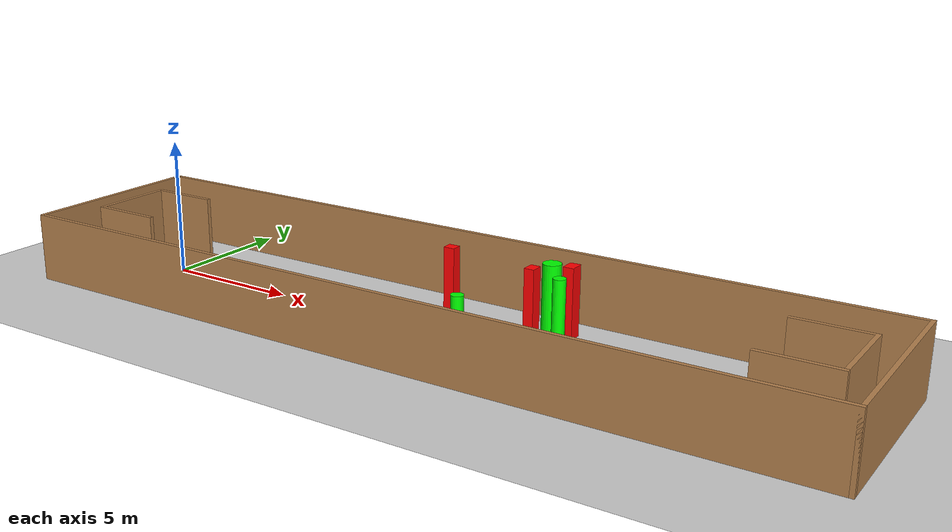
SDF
<sdf version="1.7">
 <world name="default">
  <light name="sun" type="directional">
   <pose>0 0 10 0 -0 0</pose>
   <diffuse>0.8 0.8 0.8 1</diffuse>
   <specular>0.2 0.2 0.2 1</specular>
   <attenuation>
    <range>1000</range>
    <constant>0.9</constant>
    <linear>0.01</linear>
    <quadratic>0.001</quadratic>
   </attenuation>
   <direction>-0.5 0.1 -0.9</direction>
   <spot><inner_angle>0</inner_angle><outer_angle>0</outer_angle><falloff>0</falloff></spot>
  </light>
  <model name="ground_plane">
   <static>1</static>
   <link name="link">
    <collision name="collision">
     <geometry><plane><normal>0 0 1</normal><size>100 100</size></plane></geometry>
     <surface>
      <contact><collide_bitmask>65535</collide_bitmask></contact>
      <friction><ode><mu>100</mu><mu2>50</mu2></ode></friction>
     </surface>
    </collision>
    <visual name="visual">
     <cast_shadows>0</cast_shadows>
     <geometry><plane><normal>0 0 1</normal><size>100 100</size></plane></geometry>
     <material>
      <script><uri>file://media/materials/scripts/gazebo.material</uri><name>Gazebo/Grey</name></script>
     </material>
    </visual>
   </link>
  </model>
  <gravity>0 0 -9.8</gravity>
  <magnetic_field>6e-06 2.3e-05 -4.2e-05</magnetic_field>
  <atmosphere type="adiabatic"/>
  <physics type="ode">
   <max_step_size>0.001</max_step_size>
   <real_time_factor>1</real_time_factor>
   <real_time_update_rate>1000</real_time_update_rate>
  </physics>
  <scene><ambient>0.4 0.4 0.4 1</ambient><background>0.7 0.7 0.7 1</background><shadows>1</shadows></scene>
  <spherical_coordinates>
   <surface_model>EARTH_WGS84</surface_model>
   <latitude_deg>0</latitude_deg>
   <longitude_deg>0</longitude_deg>
   <elevation>0</elevation>
   <heading_deg>0</heading_deg>
  </spherical_coordinates>
  <model name="my_base_walls">
   <link name="Wall_0">
    <collision name="Wall_0_Collision">
     <geometry><box><size>7.15 0.15 2.5</size></box></geometry>
     <pose>0 0 1.25 0 -0 0</pose>
    </collision>
    <visual name="Wall_0_Visual">
     <pose>0 0 1.25 0 -0 0</pose>
     <geometry><box><size>7.15 0.15 2.5</size></box></geometry>
     <material>
      <script><uri>file://media/materials/scripts/gazebo.material</uri><name>Gazebo/Wood</name></script>
      <ambient>1 1 1 1</ambient>
     </material>
     <meta><layer>0</layer></meta>
    </visual>
    <pose>-15 0 0 0 -0 1.5708</pose>
   </link>
   <link name="Wall_10">
    <collision name="Wall_10_Collision">
     <geometry><box><size>2.65 0.15 2.5</size></box></geometry>
     <pose>0 0 1.25 0 -0 0</pose>
    </collision>
    <visual name="Wall_10_Visual">
     <pose>0 0 1.25 0 -0 0</pose>
     <geometry><box><size>2.65 0.15 2.5</size></box></geometry>
     <material>
      <script><uri>file://media/materials/scripts/gazebo.material</uri><name>Gazebo/Wood</name></script>
      <ambient>1 1 1 1</ambient>
     </material>
     <meta><layer>0</layer></meta>
    </visual>
    <pose>-12.75 -1.5 0 0 -0 0</pose>
   </link>
   <link name="Wall_12">
    <collision name="Wall_12_Collision">
     <geometry><box><size>2.65 0.15 2.5</size></box></geometry>
     <pose>0 0 1.25 0 -0 0</pose>
    </collision>
    <visual name="Wall_12_Visual">
     <pose>0 0 1.25 0 -0 0</pose>
     <geometry><box><size>2.65 0.15 2.5</size></box></geometry>
     <material>
      <script><uri>file://media/materials/scripts/gazebo.material</uri><name>Gazebo/Wood</name></script>
      <ambient>1 1 1 1</ambient>
     </material>
     <meta><layer>0</layer></meta>
    </visual>
    <pose>-12.75 1.5 0 0 -0 0</pose>
   </link>
   <link name="Wall_14">
    <collision name="Wall_14_Collision">
     <geometry><box><size>3.15 0.15 2.5</size></box></geometry>
     <pose>0 0 1.25 0 -0 0</pose>
    </collision>
    <visual name="Wall_14_Visual">
     <pose>0 0 1.25 0 -0 0</pose>
     <geometry><box><size>3.15 0.15 2.5</size></box></geometry>
     <material>
      <script><uri>file://media/materials/scripts/gazebo.material</uri><name>Gazebo/Wood</name></script>
      <ambient>1 1 1 1</ambient>
     </material>
     <meta><layer>0</layer></meta>
    </visual>
    <pose>14 0 0 0 -0 -1.5708</pose>
   </link>
   <link name="Wall_15">
    <collision name="Wall_15_Collision">
     <geometry><box><size>2.65 0.15 2.5</size></box></geometry>
     <pose>0 0 1.25 0 -0 0</pose>
    </collision>
    <visual name="Wall_15_Visual">
     <pose>0 0 1.25 0 -0 0</pose>
     <geometry><box><size>2.65 0.15 2.5</size></box></geometry>
     <material>
      <script><uri>file://media/materials/scripts/gazebo.material</uri><name>Gazebo/Wood</name></script>
      <ambient>1 1 1 1</ambient>
     </material>
     <meta><layer>0</layer></meta>
    </visual>
    <pose>12.75 -1.5 0 0 -0 3.14159</pose>
   </link>
   <link name="Wall_17">
    <collision name="Wall_17_Collision">
     <geometry><box><size>2.65 0.15 2.5</size></box></geometry>
     <pose>0 0 1.25 0 -0 0</pose>
    </collision>
    <visual name="Wall_17_Visual">
     <pose>0 0 1.25 0 -0 0</pose>
     <geometry><box><size>2.65 0.15 2.5</size></box></geometry>
     <material>
      <script><uri>file://media/materials/scripts/gazebo.material</uri><name>Gazebo/Wood</name></script>
      <ambient>1 1 1 1</ambient>
     </material>
     <meta><layer>0</layer></meta>
    </visual>
    <pose>12.75 1.5 0 0 -0 3.14159</pose>
   </link>
   <link name="Wall_2">
    <collision name="Wall_2_Collision">
     <geometry><box><size>30.15 0.15 2.5</size></box></geometry>
     <pose>0 0 1.25 0 -0 0</pose>
    </collision>
    <visual name="Wall_2_Visual">
     <pose>0 0 1.25 0 -0 0</pose>
     <geometry><box><size>30.15 0.15 2.5</size></box></geometry>
     <material>
      <script><uri>file://media/materials/scripts/gazebo.material</uri><name>Gazebo/Wood</name></script>
      <ambient>1 1 1 1</ambient>
     </material>
     <meta><layer>0</layer></meta>
    </visual>
    <pose>-0 -3.5 0 0 -0 0</pose>
   </link>
   <link name="Wall_4">
    <collision name="Wall_4_Collision">
     <geometry><box><size>30.15 0.15 2.5</size></box></geometry>
     <pose>0 0 1.25 0 -0 0</pose>
    </collision>
    <visual name="Wall_4_Visual">
     <pose>0 0 1.25 0 -0 0</pose>
     <geometry><box><size>30.15 0.15 2.5</size></box></geometry>
     <material>
      <script><uri>file://media/materials/scripts/gazebo.material</uri><name>Gazebo/Wood</name></script>
      <ambient>1 1 1 1</ambient>
     </material>
     <meta><layer>0</layer></meta>
    </visual>
    <pose>-0 3.5 0 0 -0 0</pose>
   </link>
   <link name="Wall_6">
    <collision name="Wall_6_Collision">
     <geometry><box><size>7.15 0.15 2.5</size></box></geometry>
     <pose>0 0 1.25 0 -0 0</pose>
    </collision>
    <visual name="Wall_6_Visual">
     <pose>0 0 1.25 0 -0 0</pose>
     <geometry><box><size>7.15 0.15 2.5</size></box></geometry>
     <material>
      <script><uri>file://media/materials/scripts/gazebo.material</uri><name>Gazebo/Wood</name></script>
      <ambient>1 1 1 1</ambient>
     </material>
     <meta><layer>0</layer></meta>
    </visual>
    <pose>15 0 0 0 -0 -1.5708</pose>
   </link>
   <link name="Wall_9">
    <collision name="Wall_9_Collision">
     <geometry><box><size>3.15 0.15 2.5</size></box></geometry>
     <pose>0 0 1.25 0 -0 0</pose>
    </collision>
    <visual name="Wall_9_Visual">
     <pose>0 0 1.25 0 -0 0</pose>
     <geometry><box><size>3.15 0.15 2.5</size></box></geometry>
     <material>
      <script><uri>file://media/materials/scripts/gazebo.material</uri><name>Gazebo/Wood</name></script>
      <ambient>1 1 1 1</ambient>
     </material>
     <meta><layer>0</layer></meta>
    </visual>
    <pose>-14 0 0 0 -0 -1.5708</pose>
   </link>
   <static>1</static>
   <pose>11.5 0 0 0 -0 0</pose>
  </model>
  <model name="cylinder1">
   <static>1</static>
   <link name="link">
    <inertial>
     <mass>1</mass>
     <inertia><ixx>0.5</ixx><ixy>0</ixy><ixz>0</ixz><iyy>0.5</iyy><iyz>0</iyz><izz>1</izz></inertia>
    </inertial>
    <collision name="collision">
     <geometry><cylinder><radius>0.2205181330390703</radius><length>2.5</length></cylinder></geometry>
    </collision>
    <visual name="visual">
     <geometry><cylinder><radius>0.2205181330390703</radius><length>2.5</length></cylinder></geometry>
     <material>
      <ambient>0 1 0 1</ambient>
      <diffuse>0 1 0 1</diffuse>
      <specular>0.1 0.1 0.1 1</specular>
      <emissive>0 0 0 0</emissive>
     </material>
    </visual>
   </link>
   <pose>15.82529813652256 0.7919267032703887 1.25 0 0 0</pose>
  </model>
  <model name="cylinder2">
   <static>1</static>
   <link name="link">
    <inertial>
     <mass>1</mass>
     <inertia><ixx>0.5</ixx><ixy>0</ixy><ixz>0</ixz><iyy>0.5</iyy><iyz>0</iyz><izz>1</izz></inertia>
    </inertial>
    <collision name="collision">
     <geometry><cylinder><radius>0.21121675128863127</radius><length>2.5</length></cylinder></geometry>
    </collision>
    <visual name="visual">
     <geometry><cylinder><radius>0.21121675128863127</radius><length>2.5</length></cylinder></geometry>
     <material>
      <ambient>0 1 0 1</ambient>
      <diffuse>0 1 0 1</diffuse>
      <specular>0.1 0.1 0.1 1</specular>
      <emissive>0 0 0 0</emissive>
     </material>
    </visual>
   </link>
   <pose>13.979376817120235 -2.292730047491105 1.25 0 0 0</pose>
  </model>
  <model name="cylinder3">
   <static>1</static>
   <link name="link">
    <inertial>
     <mass>1</mass>
     <inertia><ixx>0.5</ixx><ixy>0</ixy><ixz>0</ixz><iyy>0.5</iyy><iyz>0</iyz><izz>1</izz></inertia>
    </inertial>
    <collision name="collision">
     <geometry><cylinder><radius>0.3218905546261501</radius><length>2.5</length></cylinder></geometry>
    </collision>
    <visual name="visual">
     <geometry><cylinder><radius>0.3218905546261501</radius><length>2.5</length></cylinder></geometry>
     <material>
      <ambient>0 1 0 1</ambient>
      <diffuse>0 1 0 1</diffuse>
      <specular>0.1 0.1 0.1 1</specular>
      <emissive>0 0 0 0</emissive>
     </material>
    </visual>
   </link>
   <pose>14.89969612742849 2.001536316348062 1.25 0 0 0</pose>
  </model>
  <model name="box1">
   <static>1</static>
   <link name="link">
    <inertial>
     <mass>1</mass>
     <inertia><ixx>0.083</ixx><ixy>0</ixy><ixz>0</ixz><iyy>0.083</iyy><iyz>0</iyz><izz>0.083</izz></inertia>
    </inertial>
    <collision name="collision">
     <geometry><box><size>0.3567874633782114 0.45341426336480767 2.5</size></box></geometry>
    </collision>
    <visual name="visual">
     <geometry><box><size>0.3567874633782114 0.45341426336480767 2.5</size></box></geometry>
     <material>
      <ambient>1 0 0 1</ambient>
      <diffuse>1 0 0 1</diffuse>
      <specular>0.1 0.1 0.1 1</specular>
      <emissive>0 0 0 0</emissive>
     </material>
    </visual>
    <sensor name="my_contact" type="contact">
     <contact><collision>box_collision</collision><topic>__default_topic__</topic></contact>
    </sensor>
   </link>
   <pose>14.569419226941196 1.2682520391672973 1.25 0 0 0</pose>
  </model>
  <model name="box2">
   <static>1</static>
   <link name="link">
    <inertial>
     <mass>1</mass>
     <inertia><ixx>0.083</ixx><ixy>0</ixy><ixz>0</ixz><iyy>0.083</iyy><iyz>0</iyz><izz>0.083</izz></inertia>
    </inertial>
    <collision name="collision">
     <geometry><box><size>0.4063880408320014 0.38701229923901187 2.5</size></box></geometry>
    </collision>
    <visual name="visual">
     <geometry><box><size>0.4063880408320014 0.38701229923901187 2.5</size></box></geometry>
     <material>
      <ambient>1 0 0 1</ambient>
      <diffuse>1 0 0 1</diffuse>
      <specular>0.1 0.1 0.1 1</specular>
      <emissive>0 0 0 0</emissive>
     </material>
    </visual>
    <sensor name="my_contact" type="contact">
     <contact><collision>box_collision</collision><topic>__default_topic__</topic></contact>
    </sensor>
   </link>
   <pose>11.178306757917815 1.6957920622088434 1.25 0 0 0</pose>
  </model>
  <model name="box3">
   <static>1</static>
   <link name="link">
    <inertial>
     <mass>1</mass>
     <inertia><ixx>0.083</ixx><ixy>0</ixy><ixz>0</ixz><iyy>0.083</iyy><iyz>0</iyz><izz>0.083</izz></inertia>
    </inertial>
    <collision name="collision">
     <geometry><box><size>0.3838572184358209 0.5212567738529281 2.5</size></box></geometry>
    </collision>
    <visual name="visual">
     <geometry><box><size>0.3838572184358209 0.5212567738529281 2.5</size></box></geometry>
     <material>
      <ambient>1 0 0 1</ambient>
      <diffuse>1 0 0 1</diffuse>
      <specular>0.1 0.1 0.1 1</specular>
      <emissive>0 0 0 0</emissive>
     </material>
    </visual>
    <sensor name="my_contact" type="contact">
     <contact><collision>box_collision</collision><topic>__default_topic__</topic></contact>
    </sensor>
   </link>
   <pose>15.554231752728223 2.1396792515444636 1.25 0 0 0</pose>
  </model>
 </world>
</sdf>
